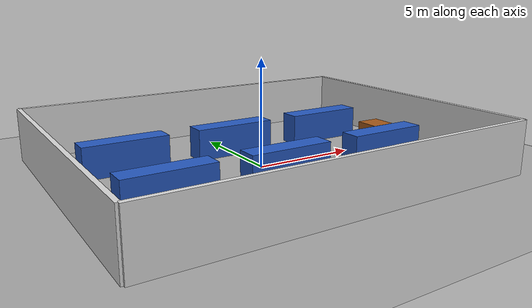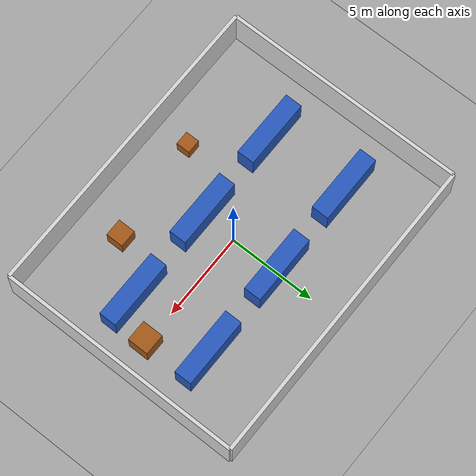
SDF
<?xml version="1.0"?>
<!-- Self-contained Gazebo Harmonic warehouse.  All geometry is local so the
     world remains available offline. -->
<sdf version="1.9">
  <world name="amr_warehouse">
    <physics name="physics" type="ignored"><max_step_size>0.01</max_step_size><real_time_factor>1.0</real_time_factor></physics>
    <plugin filename="gz-sim-physics-system" name="gz::sim::systems::Physics"/>
    <plugin filename="gz-sim-user-commands-system" name="gz::sim::systems::UserCommands"/>
    <plugin filename="gz-sim-scene-broadcaster-system" name="gz::sim::systems::SceneBroadcaster"/>
    <plugin filename="gz-sim-sensors-system" name="gz::sim::systems::Sensors"><render_engine>ogre2</render_engine></plugin>
    <plugin filename="gz-sim-imu-system" name="gz::sim::systems::Imu"/>
    <gui>
      <camera name="warehouse_overview">
        <pose>0 -18 14 0 0.72 1.57</pose>
      </camera>
    </gui>
    <scene><ambient>0.62 0.62 0.62 1</ambient><background>0.78 0.78 0.78 1</background><shadows>false</shadows></scene>
    <light type="directional" name="sun"><pose>0 0 10 0 0 0</pose><diffuse>0.9 0.9 0.9 1</diffuse><specular>0.2 0.2 0.2 1</specular><direction>-0.5 0.1 -0.9</direction></light>

    <model name="ground_plane"><static>true</static><link name="ground_link"><collision name="ground_collision"><geometry><plane><normal>0 0 1</normal><size>30 24</size></plane></geometry></collision><visual name="ground_visual"><geometry><plane><normal>0 0 1</normal><size>30 24</size></plane></geometry><material><ambient>0.65 0.65 0.65 1</ambient><diffuse>0.65 0.65 0.65 1</diffuse></material></visual></link></model>

    <!-- 18 m by 14 m collision enclosure. -->
    <model name="north_wall"><static>true</static><pose>0 7 1.25 0 0 0</pose><link name="link"><collision name="collision"><geometry><box><size>18 0.2 2.5</size></box></geometry></collision><visual name="visual"><geometry><box><size>18 0.2 2.5</size></box></geometry><material><diffuse>0.85 0.85 0.85 1</diffuse></material></visual></link></model>
    <model name="south_wall"><static>true</static><pose>0 -7 1.25 0 0 0</pose><link name="link"><collision name="collision"><geometry><box><size>18 0.2 2.5</size></box></geometry></collision><visual name="visual"><geometry><box><size>18 0.2 2.5</size></box></geometry><material><diffuse>0.85 0.85 0.85 1</diffuse></material></visual></link></model>
    <model name="east_wall"><static>true</static><pose>9 0 1.25 0 0 0</pose><link name="link"><collision name="collision"><geometry><box><size>0.2 14 2.5</size></box></geometry></collision><visual name="visual"><geometry><box><size>0.2 14 2.5</size></box></geometry><material><diffuse>0.85 0.85 0.85 1</diffuse></material></visual></link></model>
    <model name="west_wall"><static>true</static><pose>-9 0 1.25 0 0 0</pose><link name="link"><collision name="collision"><geometry><box><size>0.2 14 2.5</size></box></geometry></collision><visual name="visual"><geometry><box><size>0.2 14 2.5</size></box></geometry><material><diffuse>0.85 0.85 0.85 1</diffuse></material></visual></link></model>

    <!-- Blue storage racks, arranged in two rows around the driving aisle. -->
    <model name="rack_1"><static>true</static><pose>-5.5 2.8 0.75 0 0 0</pose><link name="link"><collision name="collision"><geometry><box><size>4 1 1.5</size></box></geometry></collision><visual name="visual"><geometry><box><size>4 1 1.5</size></box></geometry><material><diffuse>0.15 0.35 0.75 1</diffuse></material></visual></link></model>
    <model name="rack_2"><static>true</static><pose>0 2.8 0.75 0 0 0</pose><link name="link"><collision name="collision"><geometry><box><size>4 1 1.5</size></box></geometry></collision><visual name="visual"><geometry><box><size>4 1 1.5</size></box></geometry><material><diffuse>0.15 0.35 0.75 1</diffuse></material></visual></link></model>
    <model name="rack_3"><static>true</static><pose>5.5 2.8 0.75 0 0 0</pose><link name="link"><collision name="collision"><geometry><box><size>4 1 1.5</size></box></geometry></collision><visual name="visual"><geometry><box><size>4 1 1.5</size></box></geometry><material><diffuse>0.15 0.35 0.75 1</diffuse></material></visual></link></model>
    <model name="rack_4"><static>true</static><pose>-5.5 -2 0.75 0 0 0</pose><link name="link"><collision name="collision"><geometry><box><size>4 1 1.5</size></box></geometry></collision><visual name="visual"><geometry><box><size>4 1 1.5</size></box></geometry><material><diffuse>0.15 0.35 0.75 1</diffuse></material></visual></link></model>
    <model name="rack_5"><static>true</static><pose>0 -2 0.75 0 0 0</pose><link name="link"><collision name="collision"><geometry><box><size>4 1 1.5</size></box></geometry></collision><visual name="visual"><geometry><box><size>4 1 1.5</size></box></geometry><material><diffuse>0.15 0.35 0.75 1</diffuse></material></visual></link></model>
    <model name="rack_6"><static>true</static><pose>5.5 -2 0.75 0 0 0</pose><link name="link"><collision name="collision"><geometry><box><size>4 1 1.5</size></box></geometry></collision><visual name="visual"><geometry><box><size>4 1 1.5</size></box></geometry><material><diffuse>0.15 0.35 0.75 1</diffuse></material></visual></link></model>

    <model name="box_obstacle_1"><static>true</static><pose>-2.5 -5 0.4 0 0 0</pose><link name="link"><collision name="collision"><geometry><box><size>0.8 0.8 0.8</size></box></geometry></collision><visual name="visual"><geometry><box><size>0.8 0.8 0.8</size></box></geometry><material><diffuse>0.65 0.35 0.1 1</diffuse></material></visual></link></model>
    <model name="box_obstacle_2"><static>true</static><pose>3.5 -4.5 0.5 0 0 0</pose><link name="link"><collision name="collision"><geometry><box><size>1 1 1</size></box></geometry></collision><visual name="visual"><geometry><box><size>1 1 1</size></box></geometry><material><diffuse>0.65 0.35 0.1 1</diffuse></material></visual></link></model>
    <model name="box_obstacle_3"><static>true</static><pose>7 0 0.6 0 0 0</pose><link name="link"><collision name="collision"><geometry><box><size>1.2 1.2 1.2</size></box></geometry></collision><visual name="visual"><geometry><box><size>1.2 1.2 1.2</size></box></geometry><material><diffuse>0.65 0.35 0.1 1</diffuse></material></visual></link></model>
  </world>
</sdf>
